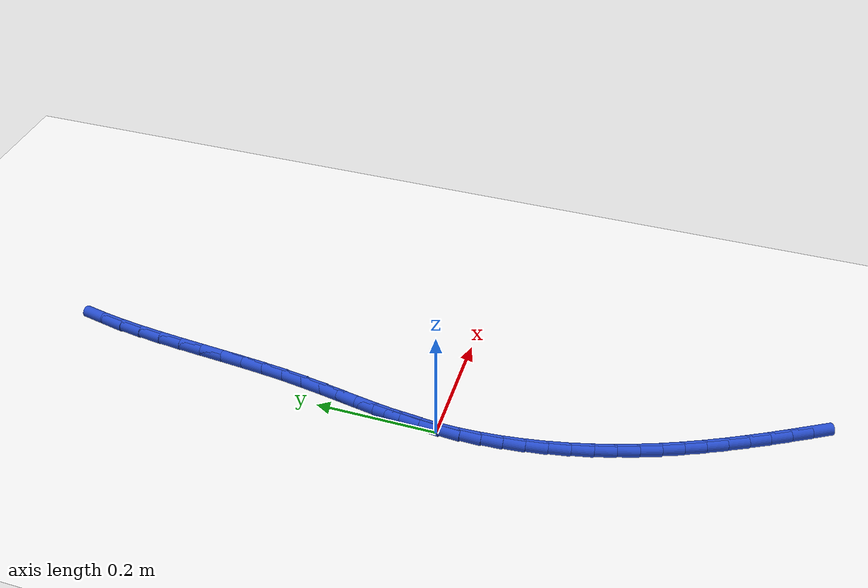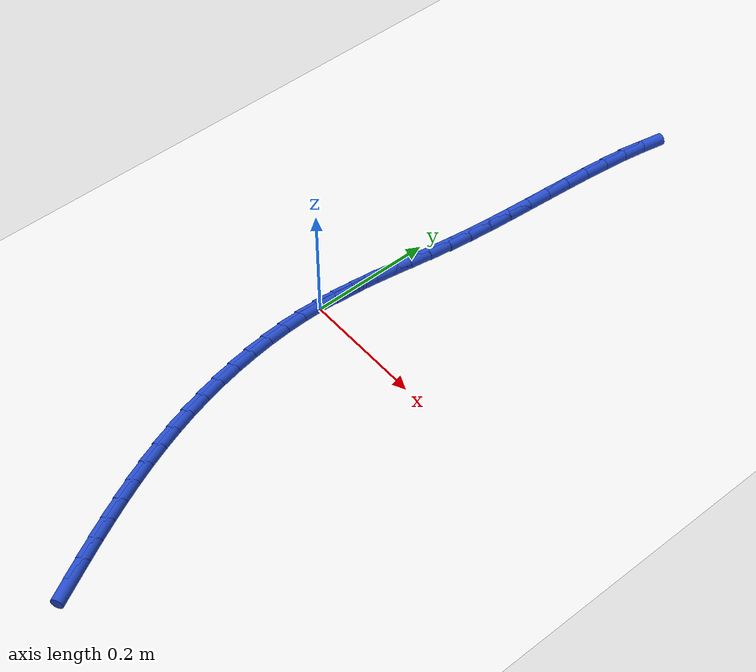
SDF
<sdf version="1.6">
 <world name="default">
  <model name="ground_plane">
   <static>1</static>
   <link name="link">
    <collision name="collision">
     <geometry><plane><normal>0 0 1</normal><size>100 100</size></plane></geometry>
     <surface><friction><ode><mu>100</mu><mu2>50</mu2></ode></friction></surface>
    </collision>
    <visual name="visual">
     <cast_shadows>0</cast_shadows>
     <geometry><plane><normal>0 0 1</normal><size>100 100</size></plane></geometry>
     <material>
      <script><uri>file://media/materials/scripts/gazebo.material</uri><name>Gazebo/WhiteGlow</name></script>
     </material>
    </visual>
   </link>
  </model>
  <model name="line">
   <link name="link_0">
    <pose>-8.673617379884035e-18 6.938893903907228e-17 0.01 0 1.57 1.5066967162168163</pose>
    <collision name="collision">
     <geometry><cylinder><radius>0.01</radius><length>0.08</length></cylinder></geometry>
    </collision>
    <visual name="visual">
     <material>
      <script><name>Gazebo/Blue</name><uri>file://media/materials/scripts/gazebo.material</uri></script>
     </material>
     <geometry><cylinder><radius>0.01</radius><length>0.08</length></cylinder></geometry>
    </visual>
   </link>
   <link name="link_1">
    <pose>0.0021181795967309134 0.0329998536982295 0.01 0 1.57 1.4651399813754398</pose>
    <collision name="collision">
     <geometry><cylinder><radius>0.01</radius><length>0.08</length></cylinder></geometry>
    </collision>
    <visual name="visual">
     <material>
      <script><name>Gazebo/Blue</name><uri>file://media/materials/scripts/gazebo.material</uri></script>
     </material>
     <geometry><cylinder><radius>0.01</radius><length>0.08</length></cylinder></geometry>
    </visual>
   </link>
   <link name="link_2">
    <pose>0.005590243179879086 0.06573933650585143 0.01 0 1.57 1.4338351481896856</pose>
    <collision name="collision">
     <geometry><cylinder><radius>0.01</radius><length>0.08</length></cylinder></geometry>
    </collision>
    <visual name="visual">
     <material>
      <script><name>Gazebo/Blue</name><uri>file://media/materials/scripts/gazebo.material</uri></script>
     </material>
     <geometry><cylinder><radius>0.01</radius><length>0.08</length></cylinder></geometry>
    </visual>
   </link>
   <link name="link_3">
    <pose>0.010098710320919392 0.09845109745758833 0.01 0 1.57 1.4133048050352077</pose>
    <collision name="collision">
     <geometry><cylinder><radius>0.01</radius><length>0.08</length></cylinder></geometry>
    </collision>
    <visual name="visual">
     <material>
      <script><name>Gazebo/Blue</name><uri>file://media/materials/scripts/gazebo.material</uri></script>
     </material>
     <geometry><cylinder><radius>0.01</radius><length>0.08</length></cylinder></geometry>
    </visual>
   </link>
   <link name="link_4">
    <pose>0.015326100591326686 0.1313677855881625 0.01 0 1.57 1.4036125392366483</pose>
    <collision name="collision">
     <geometry><cylinder><radius>0.01</radius><length>0.08</length></cylinder></geometry>
    </collision>
    <visual name="visual">
     <material>
      <script><name>Gazebo/Blue</name><uri>file://media/materials/scripts/gazebo.material</uri></script>
     </material>
     <geometry><cylinder><radius>0.01</radius><length>0.08</length></cylinder></geometry>
    </visual>
   </link>
   <link name="link_5">
    <pose>0.020954933562575835 0.16472204993229628 0.01 0 1.57 1.4044455047664022</pose>
    <collision name="collision">
     <geometry><cylinder><radius>0.01</radius><length>0.08</length></cylinder></geometry>
    </collision>
    <visual name="visual">
     <material>
      <script><name>Gazebo/Blue</name><uri>file://media/materials/scripts/gazebo.material</uri></script>
     </material>
     <geometry><cylinder><radius>0.01</radius><length>0.08</length></cylinder></geometry>
    </visual>
   </link>
   <link name="link_6">
    <pose>0.02666772880614173 0.19874653952471222 0.01 0 1.57 1.4151882282810488</pose>
    <collision name="collision">
     <geometry><cylinder><radius>0.01</radius><length>0.08</length></cylinder></geometry>
    </collision>
    <visual name="visual">
     <material>
      <script><name>Gazebo/Blue</name><uri>file://media/materials/scripts/gazebo.material</uri></script>
     </material>
     <geometry><cylinder><radius>0.01</radius><length>0.08</length></cylinder></geometry>
    </visual>
   </link>
   <link name="link_7">
    <pose>0.032147005893499205 0.23367390340013242 0.01 0 1.57 1.4349797305849115</pose>
    <collision name="collision">
     <geometry><cylinder><radius>0.01</radius><length>0.08</length></cylinder></geometry>
    </collision>
    <visual name="visual">
     <material>
      <script><name>Gazebo/Blue</name><uri>file://media/materials/scripts/gazebo.material</uri></script>
     </material>
     <geometry><cylinder><radius>0.01</radius><length>0.08</length></cylinder></geometry>
    </visual>
   </link>
   <link name="link_8">
    <pose>0.03707528439612314 0.2697367905932794 0.01 0 1.57 1.4600571389760253</pose>
    <collision name="collision">
     <geometry><cylinder><radius>0.01</radius><length>0.08</length></cylinder></geometry>
    </collision>
    <visual name="visual">
     <material>
      <script><name>Gazebo/Blue</name><uri>file://media/materials/scripts/gazebo.material</uri></script>
     </material>
     <geometry><cylinder><radius>0.01</radius><length>0.08</length></cylinder></geometry>
    </visual>
   </link>
   <link name="link_9">
    <pose>0.041227540492026836 0.3070792076161011 0.01 0 1.57 1.47933426836832</pose>
    <collision name="collision">
     <geometry><cylinder><radius>0.01</radius><length>0.08</length></cylinder></geometry>
    </collision>
    <visual name="visual">
     <material>
      <script><name>Gazebo/Blue</name><uri>file://media/materials/scripts/gazebo.material</uri></script>
     </material>
     <geometry><cylinder><radius>0.01</radius><length>0.08</length></cylinder></geometry>
    </visual>
   </link>
   <link name="link_10">
    <pose>0.04475039405332357 0.3454888485886928 0.01 0 1.57 1.4909806740862932</pose>
    <collision name="collision">
     <geometry><cylinder><radius>0.01</radius><length>0.08</length></cylinder></geometry>
    </collision>
    <visual name="visual">
     <material>
      <script><name>Gazebo/Blue</name><uri>file://media/materials/scripts/gazebo.material</uri></script>
     </material>
     <geometry><cylinder><radius>0.01</radius><length>0.08</length></cylinder></geometry>
    </visual>
   </link>
   <link name="link_11">
    <pose>0.04788383242284773 0.3846638918197912 0.01 0 1.57 1.4956576767791538</pose>
    <collision name="collision">
     <geometry><cylinder><radius>0.01</radius><length>0.08</length></cylinder></geometry>
    </collision>
    <visual name="visual">
     <material>
      <script><name>Gazebo/Blue</name><uri>file://media/materials/scripts/gazebo.material</uri></script>
     </material>
     <geometry><cylinder><radius>0.01</radius><length>0.08</length></cylinder></geometry>
    </visual>
   </link>
   <link name="link_12">
    <pose>0.050867842943838955 0.42430251561774424 0.01 0 1.57 1.493699682080578</pose>
    <collision name="collision">
     <geometry><cylinder><radius>0.01</radius><length>0.08</length></cylinder></geometry>
    </collision>
    <visual name="visual">
     <material>
      <script><name>Gazebo/Blue</name><uri>file://media/materials/scripts/gazebo.material</uri></script>
     </material>
     <geometry><cylinder><radius>0.01</radius><length>0.08</length></cylinder></geometry>
    </visual>
   </link>
   <link name="link_13">
    <pose>0.05394241295953693 0.4641028982908998 0.01 0 1.57 1.4851493421027155</pose>
    <collision name="collision">
     <geometry><cylinder><radius>0.01</radius><length>0.08</length></cylinder></geometry>
    </collision>
    <visual name="visual">
     <material>
      <script><name>Gazebo/Blue</name><uri>file://media/materials/scripts/gazebo.material</uri></script>
     </material>
     <geometry><cylinder><radius>0.01</radius><length>0.08</length></cylinder></geometry>
    </visual>
   </link>
   <link name="link_14">
    <pose>0.05734752981318129 0.5037632181476058 0.01 0 1.57 1.469769448681049</pose>
    <collision name="collision">
     <geometry><cylinder><radius>0.01</radius><length>0.08</length></cylinder></geometry>
    </collision>
    <visual name="visual">
     <material>
      <script><name>Gazebo/Blue</name><uri>file://media/materials/scripts/gazebo.material</uri></script>
     </material>
     <geometry><cylinder><radius>0.01</radius><length>0.08</length></cylinder></geometry>
    </visual>
   </link>
   <link name="link_15">
    <pose>0.061323180848011694 0.5429816534962103 0.01 0 1.57 1.4470342885404268</pose>
    <collision name="collision">
     <geometry><cylinder><radius>0.01</radius><length>0.08</length></cylinder></geometry>
    </collision>
    <visual name="visual">
     <material>
      <script><name>Gazebo/Blue</name><uri>file://media/materials/scripts/gazebo.material</uri></script>
     </material>
     <geometry><cylinder><radius>0.01</radius><length>0.08</length></cylinder></geometry>
    </visual>
   </link>
   <link name="link_16">
    <pose>0.06610935340726783 0.5814563826450613 0.01 0 1.57 1.4161029471662532</pose>
    <collision name="collision">
     <geometry><cylinder><radius>0.01</radius><length>0.08</length></cylinder></geometry>
    </collision>
    <visual name="visual">
     <material>
      <script><name>Gazebo/Blue</name><uri>file://media/materials/scripts/gazebo.material</uri></script>
     </material>
     <geometry><cylinder><radius>0.01</radius><length>0.08</length></cylinder></geometry>
    </visual>
   </link>
   <link name="link_17">
    <pose>0.07194603483418932 0.6188855839025065 0.01 0 1.57 1.3757787722762227</pose>
    <collision name="collision">
     <geometry><cylinder><radius>0.01</radius><length>0.08</length></cylinder></geometry>
    </collision>
    <visual name="visual">
     <material>
      <script><name>Gazebo/Blue</name><uri>file://media/materials/scripts/gazebo.material</uri></script>
     </material>
     <geometry><cylinder><radius>0.01</radius><length>0.08</length></cylinder></geometry>
    </visual>
   </link>
   <link name="link_213">
    <pose>0.16213969424081748 -0.5500295780501105 0.01 0 1.57 -1.0726753484698301</pose>
    <collision name="collision">
     <geometry><cylinder><radius>0.01</radius><length>0.08</length></cylinder></geometry>
    </collision>
    <visual name="visual">
     <material>
      <script><name>Gazebo/Blue</name><uri>file://media/materials/scripts/gazebo.material</uri></script>
     </material>
     <geometry><cylinder><radius>0.01</radius><length>0.08</length></cylinder></geometry>
    </visual>
   </link>
   <link name="link_214">
    <pose>0.14552710869841198 -0.519484166881045 0.01 0 1.57 -1.0851895701614669</pose>
    <collision name="collision">
     <geometry><cylinder><radius>0.01</radius><length>0.08</length></cylinder></geometry>
    </collision>
    <visual name="visual">
     <material>
      <script><name>Gazebo/Blue</name><uri>file://media/materials/scripts/gazebo.material</uri></script>
     </material>
     <geometry><cylinder><radius>0.01</radius><length>0.08</length></cylinder></geometry>
    </visual>
   </link>
   <link name="link_215">
    <pose>0.12941715285657757 -0.4889589059180522 0.01 0 1.57 -1.1003094233505235</pose>
    <collision name="collision">
     <geometry><cylinder><radius>0.01</radius><length>0.08</length></cylinder></geometry>
    </collision>
    <visual name="visual">
     <material>
      <script><name>Gazebo/Blue</name><uri>file://media/materials/scripts/gazebo.material</uri></script>
     </material>
     <geometry><cylinder><radius>0.01</radius><length>0.08</length></cylinder></geometry>
    </visual>
   </link>
   <link name="link_216">
    <pose>0.113874615230135 -0.45839816662079136 0.01 0 1.57 -1.118807137861961</pose>
    <collision name="collision">
     <geometry><cylinder><radius>0.01</radius><length>0.08</length></cylinder></geometry>
    </collision>
    <visual name="visual">
     <material>
      <script><name>Gazebo/Blue</name><uri>file://media/materials/scripts/gazebo.material</uri></script>
     </material>
     <geometry><cylinder><radius>0.01</radius><length>0.08</length></cylinder></geometry>
    </visual>
   </link>
   <link name="link_217">
    <pose>0.09898041344743216 -0.42772078020268717 0.01 0 1.57 -1.1406643702574695</pose>
    <collision name="collision">
     <geometry><cylinder><radius>0.01</radius><length>0.08</length></cylinder></geometry>
    </collision>
    <visual name="visual">
     <material>
      <script><name>Gazebo/Blue</name><uri>file://media/materials/scripts/gazebo.material</uri></script>
     </material>
     <geometry><cylinder><radius>0.01</radius><length>0.08</length></cylinder></geometry>
    </visual>
   </link>
   <link name="link_218">
    <pose>0.08481546513681718 -0.3968455778771645 0.01 0 1.57 -1.1658236575851066</pose>
    <collision name="collision">
     <geometry><cylinder><radius>0.01</radius><length>0.08</length></cylinder></geometry>
    </collision>
    <visual name="visual">
     <material>
      <script><name>Gazebo/Blue</name><uri>file://media/materials/scripts/gazebo.material</uri></script>
     </material>
     <geometry><cylinder><radius>0.01</radius><length>0.08</length></cylinder></geometry>
    </visual>
   </link>
   <link name="link_219">
    <pose>0.07146068792663791 -0.36569139085764796 0.01 0 1.57 -1.1941816679840531</pose>
    <collision name="collision">
     <geometry><cylinder><radius>0.01</radius><length>0.08</length></cylinder></geometry>
    </collision>
    <visual name="visual">
     <material>
      <script><name>Gazebo/Blue</name><uri>file://media/materials/scripts/gazebo.material</uri></script>
     </material>
     <geometry><cylinder><radius>0.01</radius><length>0.08</length></cylinder></geometry>
    </visual>
   </link>
   <link name="link_220">
    <pose>0.05899699944524319 -0.33417705035756406 0.01 0 1.57 -1.2255831002708815</pose>
    <collision name="collision">
     <geometry><cylinder><radius>0.01</radius><length>0.08</length></cylinder></geometry>
    </collision>
    <visual name="visual">
     <material>
      <script><name>Gazebo/Blue</name><uri>file://media/materials/scripts/gazebo.material</uri></script>
     </material>
     <geometry><cylinder><radius>0.01</radius><length>0.08</length></cylinder></geometry>
    </visual>
   </link>
   <link name="link_221">
    <pose>0.04750531732098086 -0.3022213875903373 0.01 0 1.57 -1.259816142301177</pose>
    <collision name="collision">
     <geometry><cylinder><radius>0.01</radius><length>0.08</length></cylinder></geometry>
    </collision>
    <visual name="visual">
     <material>
      <script><name>Gazebo/Blue</name><uri>file://media/materials/scripts/gazebo.material</uri></script>
     </material>
     <geometry><cylinder><radius>0.01</radius><length>0.08</length></cylinder></geometry>
    </visual>
   </link>
   <link name="link_222">
    <pose>0.03706655918218912 -0.2697432337695513 0.01 0 1.57 -1.2962577941433415</pose>
    <collision name="collision">
     <geometry><cylinder><radius>0.01</radius><length>0.08</length></cylinder></geometry>
    </collision>
    <visual name="visual">
     <material>
      <script><name>Gazebo/Blue</name><uri>file://media/materials/scripts/gazebo.material</uri></script>
     </material>
     <geometry><cylinder><radius>0.01</radius><length>0.08</length></cylinder></geometry>
    </visual>
   </link>
   <link name="link_223">
    <pose>0.02775934401396244 -0.23669796686750585 0.01 0 1.57 -1.333462261455465</pose>
    <collision name="collision">
     <geometry><cylinder><radius>0.01</radius><length>0.08</length></cylinder></geometry>
    </collision>
    <visual name="visual">
     <material>
      <script><name>Gazebo/Blue</name><uri>file://media/materials/scripts/gazebo.material</uri></script>
     </material>
     <geometry><cylinder><radius>0.01</radius><length>0.08</length></cylinder></geometry>
    </visual>
   </link>
   <link name="link_224">
    <pose>0.019653141187940183 -0.2031864370676697 0.01 0 1.57 -1.3714169541112804</pose>
    <collision name="collision">
     <geometry><cylinder><radius>0.01</radius><length>0.08</length></cylinder></geometry>
    </collision>
    <visual name="visual">
     <material>
      <script><name>Gazebo/Blue</name><uri>file://media/materials/scripts/gazebo.material</uri></script>
     </material>
     <geometry><cylinder><radius>0.01</radius><length>0.08</length></cylinder></geometry>
    </visual>
   </link>
   <link name="link_225">
    <pose>0.01281514385737042 -0.169345684773345 0.01 0 1.57 -1.4104990242893876</pose>
    <collision name="collision">
     <geometry><cylinder><radius>0.01</radius><length>0.08</length></cylinder></geometry>
    </collision>
    <visual name="visual">
     <material>
      <script><name>Gazebo/Blue</name><uri>file://media/materials/scripts/gazebo.material</uri></script>
     </material>
     <geometry><cylinder><radius>0.01</radius><length>0.08</length></cylinder></geometry>
    </visual>
   </link>
   <link name="link_226">
    <pose>0.0073125451755014625 -0.13531275038783483 0.01 0 1.57 -1.451094476256871</pose>
    <collision name="collision">
     <geometry><cylinder><radius>0.01</radius><length>0.08</length></cylinder></geometry>
    </collision>
    <visual name="visual">
     <material>
      <script><name>Gazebo/Blue</name><uri>file://media/materials/scripts/gazebo.material</uri></script>
     </material>
     <geometry><cylinder><radius>0.01</radius><length>0.08</length></cylinder></geometry>
    </visual>
   </link>
   <link name="link_227">
    <pose>0.003212538295581624 -0.10122467431444229 0.01 0 1.57 -1.4936045946603977</pose>
    <collision name="collision">
     <geometry><cylinder><radius>0.01</radius><length>0.08</length></cylinder></geometry>
    </collision>
    <visual name="visual">
     <material>
      <script><name>Gazebo/Blue</name><uri>file://media/materials/scripts/gazebo.material</uri></script>
     </material>
     <geometry><cylinder><radius>0.01</radius><length>0.08</length></cylinder></geometry>
    </visual>
   </link>
   <link name="link_228">
    <pose>0.0005823163708591696 -0.06721849695646949 0.01 0 1.57 -1.5384509033023126</pose>
    <collision name="collision">
     <geometry><cylinder><radius>0.01</radius><length>0.08</length></cylinder></geometry>
    </collision>
    <visual name="visual">
     <material>
      <script><name>Gazebo/Blue</name><uri>file://media/materials/scripts/gazebo.material</uri></script>
     </material>
     <geometry><cylinder><radius>0.01</radius><length>0.08</length></cylinder></geometry>
    </visual>
   </link>
   <link name="link_229">
    <pose>-0.0005109274454174525 -0.0334312587172213 0.01 0 1.57 1.5555145907233978</pose>
    <collision name="collision">
     <geometry><cylinder><radius>0.01</radius><length>0.08</length></cylinder></geometry>
    </collision>
    <visual name="visual">
     <material>
      <script><name>Gazebo/Blue</name><uri>file://media/materials/scripts/gazebo.material</uri></script>
     </material>
     <geometry><cylinder><radius>0.01</radius><length>0.08</length></cylinder></geometry>
    </visual>
   </link>
   <link name="link_230">
    <pose>-1.214306433183765e-17 1.5265566588595902e-16 0.01 0 1.57 1.5046389609276016</pose>
    <collision name="collision">
     <geometry><cylinder><radius>0.01</radius><length>0.08</length></cylinder></geometry>
    </collision>
    <visual name="visual">
     <material>
      <script><name>Gazebo/Blue</name><uri>file://media/materials/scripts/gazebo.material</uri></script>
     </material>
     <geometry><cylinder><radius>0.01</radius><length>0.08</length></cylinder></geometry>
    </visual>
   </link>
   <link name="link_231">
    <pose>0.0021822918603597984 0.032938238791891804 0.01 0 1.57 1.450029092271121</pose>
    <collision name="collision">
     <geometry><cylinder><radius>0.01</radius><length>0.08</length></cylinder></geometry>
    </collision>
    <visual name="visual">
     <material>
      <script><name>Gazebo/Blue</name><uri>file://media/materials/scripts/gazebo.material</uri></script>
     </material>
     <geometry><cylinder><radius>0.01</radius><length>0.08</length></cylinder></geometry>
    </visual>
   </link>
   <link name="link_232">
    <pose>0.006103141288910294 0.06524641725515058 0.01 0 1.57 1.4775278504516876</pose>
    <collision name="collision">
     <geometry><cylinder><radius>0.01</radius><length>0.08</length></cylinder></geometry>
    </collision>
    <visual name="visual">
     <material>
      <script><name>Gazebo/Blue</name><uri>file://media/materials/scripts/gazebo.material</uri></script>
     </material>
     <geometry><cylinder><radius>0.01</radius><length>0.08</length></cylinder></geometry>
    </visual>
   </link>
  </model>
 </world>
</sdf>
